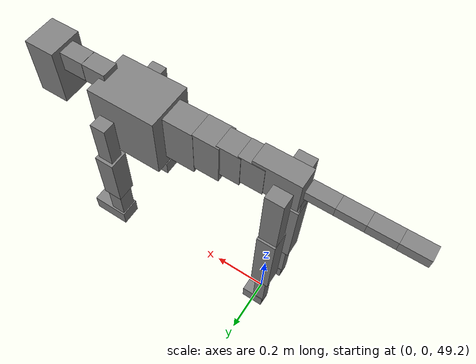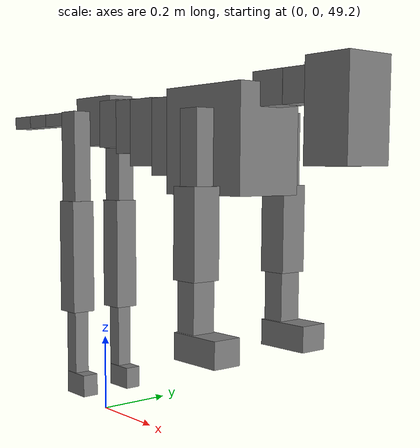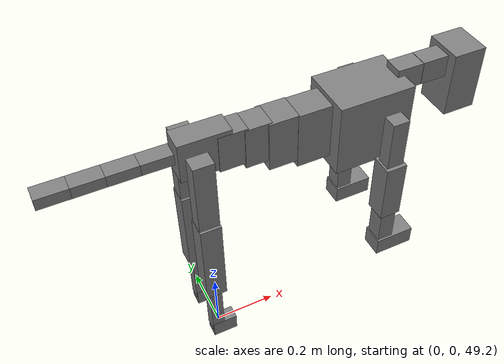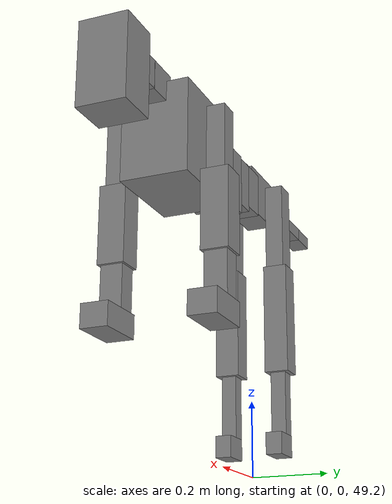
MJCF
<mujoco model="dog">

    <default>
        <joint armature="0.02" stiffness="1" damping="0.2" limited="true"/>
        <geom condim="3" friction="1 0.05 0.05" margin="0.01"/>
        <motor ctrllimited="true" ctrlrange="-1.0 1.0" forcelimited="true" gear="50"/>
    </default>

    <compiler inertiafromgeom="true" angle="radian"/>

    <option timestep="0.016" iterations="50" tolerance="1e-10" solver="Newton" jacobian="dense" cone="pyramidal"/>

    <size nconmax="20000" njmax="60000" nstack="5000000"/>
    <visual>
        <map force="0.1" zfar="30"/>
        <rgba haze="0.15 0.25 0.35 1"/>
        <quality shadowsize="2048"/>
        <global offwidth="800" offheight="800"/>
    </visual>

    <asset>
        <texture type="skybox" builtin="gradient" rgb1="0.3 0.5 0.7" rgb2="0 0 0" width="512" height="512"/>
        <texture name="texplane" type="2d" builtin="checker" rgb1=".2 .3 .4" rgb2=".1 0.15 0.2" width="512" height="512"
                 mark="cross" markrgb=".8 .8 .8"/>
        <texture name="texgeom" type="cube" builtin="flat" mark="cross" width="127" height="1278" rgb1="0.8 0.6 0.4"
                 rgb2="0.8 0.6 0.4" markrgb="1 1 1" random="0.01"/>

        <material name="matplane" reflectance="0.3" texture="texplane" texrepeat="1 1" texuniform="true"/>
        <material name="matgeom" texture="texgeom" texuniform="true" rgba="0.8 0.6 .4 1"/>
    </asset>

    <worldbody>
        <geom name="floor" pos="0 0 0" size="0 0 .25" type="plane" material="matplane" condim="3"/>

        <light directional="false" diffuse=".2 .2 .2" specular="0 0 0" pos="0 0 5" dir="0 0 -1" castshadow="false"/>
        <light mode="targetbodycom" target="torso" directional="false" diffuse=".8 .8 .8" specular="0.3 0.3 0.3"
               pos="0 0 4.0" dir="0 0 -1"/>

        <body name="root" pos="0 0 50">
            <freejoint name="root_1"/>
            <geom type="box" pos="0 0 -0.02" size="0.0774  0.0358  0.063" density="2030"/>

            <body name="spine1" pos="0.054 0 0">
                <joint name="spine1_y" axis="0 1 0" range="0 0.7" limited="true"/>
                <geom type="box" pos="0.02375 0 -0.03" size="0.04375  0.0375  0.05985" density="2030"/>

                <body name="spine2" pos="0.0612 0 0">
                    <joint name="spine2_y" axis="0 1 0" range="-0.15 0.15" limited="true"/>
                    <geom type="box" pos="0.03555  0  -0.04" size="0.04055  0.039  0.06615" density="2030"/>

                    <body name="spine3" pos="0.0730 0 0">
                        <joint name="spine3_y" axis="0 1 0" range="-0.15 0.15" limited="true"/>
                        <geom type="box" pos="0.03555  0  -0.057" size="0.04555  0.0445  0.081" density="2030"/>

                        <body name="spine4" pos="0.0780 0 0">
                            <joint name="spine4_y" axis="0 1 0" range="-0.15 0.15" limited="true"/>
                            <geom type="box" pos="0.05265  0  -0.07" size="0.05265  0.045  0.09135" density="2030"/>

                            <body name="torso" pos="0.1082 0 0">
                                <joint name="torso_y" axis="0 1 0" range="-0.15 0.15" limited="true"/>
                                <geom type="box" pos="0.11925  0  -0.085" size="0.11925  0.085  0.11745"
                                      density="2030"/>

                                <body name="neck1" pos="0.2160  0   0.0180">
                                    <joint name="neck1_y" axis="0 1 0" range="-1.2  -1" limited="true"/>
                                    <geom type="box" pos="0.0423  0  0" size="0.0423  0.03  0.036" density="2325"/>

                                    <body name="neck2" pos="0.0853  0  0">
                                        <joint name="neck2_y" axis="0 1 0" range="0.1  0" limited="true"/>
                                        <geom type="box" pos="0.0423  0  0" size="0.0423  0.03  0.036" density="2325"/>

                                        <body name="head" pos="0.0853  0  0">
                                            <joint name="head_y" axis="0 1 0" range="-0.3  -0.2" limited="true"/>
                                            <geom type="box" pos="0.0531  0  -0.055" size="0.0531  0.06  0.1044"
                                                  density="4030"/>

                                        </body>
                                    </body>
                                </body>

                                <body name="front_shoulder" pos="0.156  0   -0.0480">
                                    <joint name="front_shoulder_y" axis="0 1 0" range="-1 1.5" limited="true"/>
                                    <geom type="box" pos="0 0.13 -0.0670" size="0.0265  0.0227  0.0936" density="1158"/>
                                    <geom type="box" pos="0 -0.13 -0.0670" size="0.0265  0.0227  0.0936"
                                          density="1158"/>

                                    <body name="front_elbow" pos="0  0  -0.1340">
                                        <joint name="front_elbow_y" axis="0 1 0" range="-2 0" limited="true"/>
                                        <geom type="box" pos="0 0.13 -0.0986" size="0.0335  0.0342  0.0986"
                                              density="1081"/>
                                        <geom type="box" pos="0 -0.13 -0.0986" size="0.0335  0.0342  0.0986"
                                              density="1081"/>

                                        <body name="front_wrist" pos="0  0  -0.1972">
                                            <joint name="front_wrist_y" axis="0 1 0" range="-0.2 0" limited="true"/>
                                            <geom type="box" pos="0 0.13 -0.0631" size="0.0255  0.0283  0.0762"
                                                  density="1664"/>
                                            <geom type="box" pos="0 -0.13 -0.0631" size="0.0255  0.0283  0.0762"
                                                  density="1664"/>

                                            <body name="front_finger_end" pos="0  0  -0.1262">
                                                <joint name="front_finger_y" axis="0 1 0" range="-0.4 1"
                                                       limited="true"/>
                                                <geom type="box" pos="0.0348  0.13  -0.0145"
                                                      size="0.0637  0.0348  0.0295" density="1515"/>
                                                <geom type="box" pos="0.0348  -0.13  -0.0145"
                                                      size="0.0637  0.0348  0.0295" density="1515"/>

                                            </body>

                                        </body>
                                    </body>
                                </body>

                            </body>
                        </body>
                    </body>
                </body>
            </body>

            <body name="back_hip" pos="-0.03 0 -0.018">
                <joint name="back_hip_y" axis="0 1 0" range="-1.5 0.3" limited="true"/>
                <geom type="box" pos="0 0.07 -0.1135" size="0.0309  0.0243  0.1363" density="1154"/>
                <geom type="box" pos="0 -0.07 -0.1135" size="0.0309  0.0243  0.1363" density="1154"/>

                <body name="back_knee" pos="0  0  -0.2270">
                    <joint name="back_knee_y" axis="0 1 0" range="0 2.8" limited="true"/>
                    <geom type="box" pos="0 0.07 -0.1319" size="0.0323  0.0319  0.1474" density="1227"/>
                    <geom type="box" pos="0 -0.07 -0.1319" size="0.0323  0.0319  0.1474" density="1227"/>

                    <body name="back_ankle" pos="0  0  -0.2637">
                        <joint name="back_ankle_y" axis="0 1 0" range="-2.2 0" limited="true"/>
                        <geom type="box" pos="0 0.07 -0.0982" size="0.0199  0.0199  0.1094" density="1284"/>
                        <geom type="box" pos="0 -0.07 -0.0982" size="0.0199  0.0199  0.1094" density="1284"/>

                        <body name="back_toe_end" pos="0  0  -0.1963">
                            <joint name="back_toe_y" axis="0 1 0" range="-0.4 1" limited="true"/>
                            <geom type="box" pos="0.0215  0.07  -0.0135" size="0.0393  0.0215  0.0285" density="1515"/>
                            <geom type="box" pos="0.0215  -0.07  -0.0135" size="0.0393  0.0215  0.0285" density="1515"/>

                        </body>
                    </body>
                </body>
            </body>

            <body name="tail1" pos="-0.074 0 -0.006">
                <joint name="tail1_y" axis="0 1 0" range="-0.2 0.2" limited="true"/>
                <geom type="box" pos="-0.0536  0  0" size="0.045  0.025  0.0175" density="1587"/>

                <body name="tail2" pos="-0.09 0 0">
                    <joint name="tail2_y" axis="0 1 0" range="-0.2 0.2" limited="true"/>
                    <geom type="box" pos="-0.0536  0  0" size="0.045  0.025  0.0175" density="1587"/>

                    <body name="tail3" pos="-0.09 0 0">
                        <joint name="tail3_y" axis="0 1 0" range="-0.2 0.2" limited="true"/>
                        <geom type="box" pos="-0.0536  0  0" size="0.045  0.025  0.0175" density="1587"/>

                        <body name="tail4" pos="-0.09 0 0">
                            <joint name="tail4_y" axis="0 1 0" range="-0.2 0.2" limited="true"/>
                            <geom type="box" pos="-0.0536  0  0" size="0.045  0.025  0.0175" density="1587"/>

                        </body>
                    </body>
                </body>
            </body>
        </body>
    </worldbody>

    <actuator>
        <motor joint="spine1_y" forcerange="-150 150     "/>
        <motor joint="spine2_y" forcerange="-150 150     "/>
        <motor joint="spine3_y" forcerange="-150 150     "/>
        <motor joint="spine4_y" forcerange="-150 150     "/>
        <motor joint="torso_y" forcerange="-150 150     "/>
        <motor joint="neck1_y" forcerange="-100 100       "/>
        <motor joint="neck2_y" forcerange="-100 100       "/>
        <motor joint="head_y" forcerange="-150 150       "/>
        <motor joint="front_shoulder_y" forcerange="-127.93 123.28"/>
        <motor joint="front_elbow_y" forcerange="-155.63 193.39"/>
        <motor joint="front_wrist_y" forcerange="-144.09 82.26"/>
        <motor joint="front_finger_y" forcerange="-47.40 97.97"/>
        <motor joint="back_hip_y" forcerange="-228.37 295.24"/>
        <motor joint="back_knee_y" forcerange="-368.88 294.77"/>
        <motor joint="back_angle_y" forcerange="-64.92 153.38"/>
        <motor joint="back_toe_y" forcerange="-27.16 64.53"/>
        <motor joint="tail1_y" forcerange="-50 50     "/>
        <motor joint="tail2_y" forcerange="-50 50     "/>
        <motor joint="tail3_y" forcerange="-50 50     "/>
        <motor joint="tail4_y" forcerange="-50 50     "/>
    </actuator>
</mujoco>
